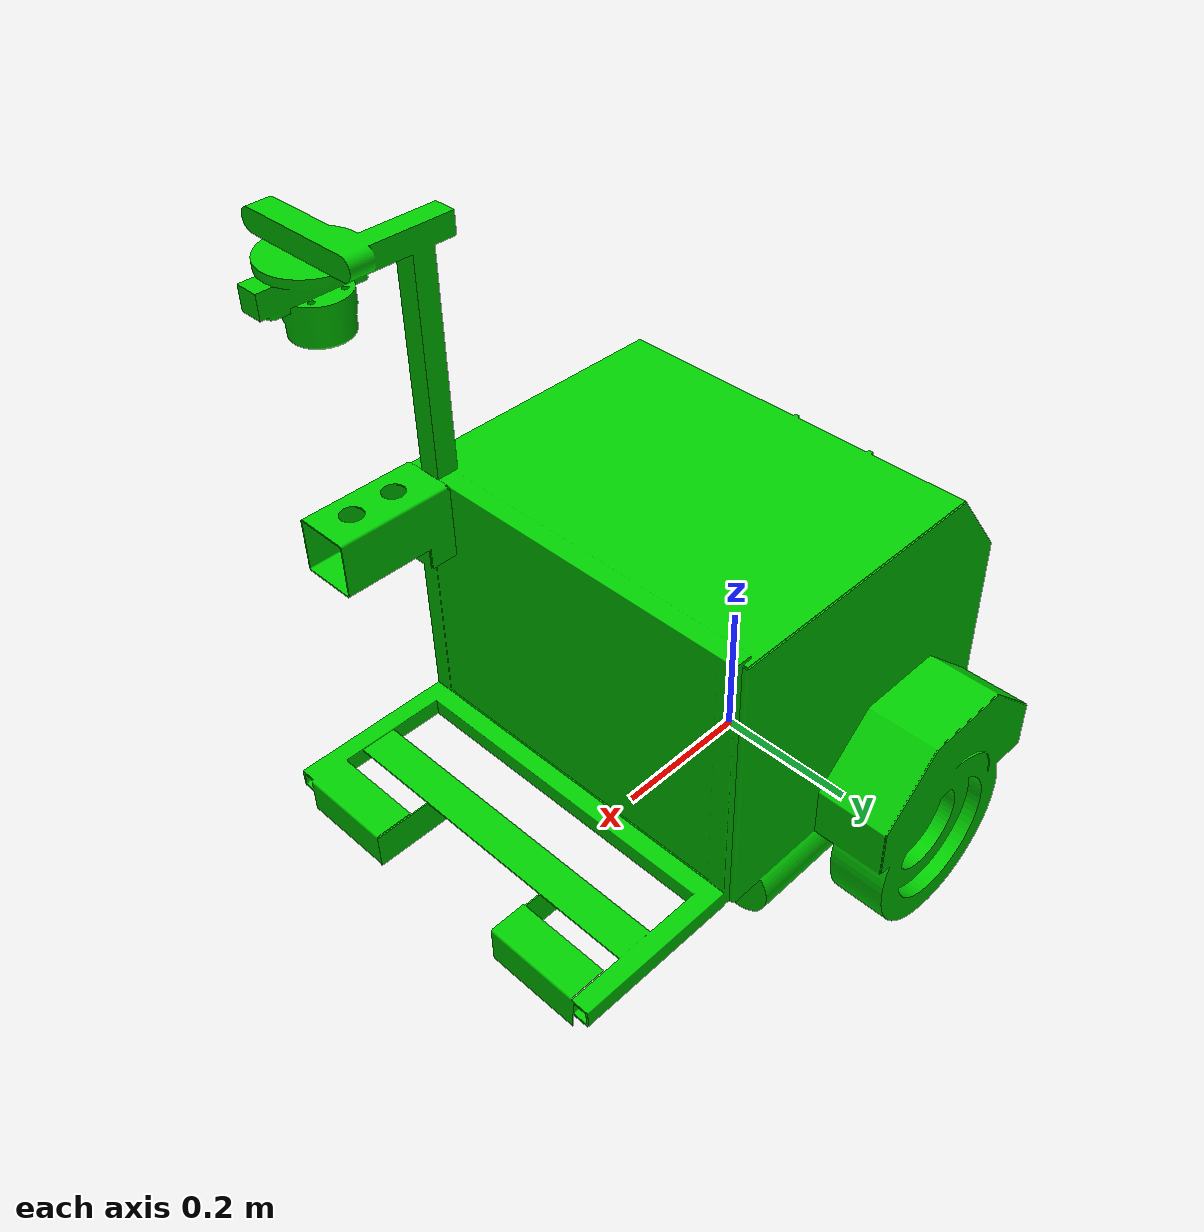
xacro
<?xml version="1.0"?>
<robot xmlns:xacro="http://ros.org/wiki/xacro">
  <!-- load parameter -->
  <xacro:property name="vehicle_info" value="${xacro.load_yaml('$(find pazel_vehicle_description)/config/vehicle_info.param.yaml')}"/>

  <material name="Black">
    <color rgba="0.15 0.15 0.15 1.0"/>
  </material>

  <material name="Green">
    <color rgba="0.0 0.8 0.0 1.0"/>
  </material>

  <material name="Grey">
    <color rgba="0.5 0.5 0.5 1.0"/>
  </material>

  <material name="Red">
    <color rgba="0.8 0.0 0.0 1.0"/>
  </material>

  <material name="Blue">
    <color rgba="0.0 0.0 0.8 1.0"/>
  </material>

  <!-- vehicle body -->
  <link name="base_link">
  <visual>
    <origin xyz="-0.161 0.22373 0.1" rpy=" 0 0 ${pi/2.0}"/>
    <geometry>
      <mesh filename="package://pazel_vehicle_description/mesh/base_link.stl" scale="1 1 1"/>
    </geometry>
    <material name="Green"/>
  </visual>

  </link>
</robot>
